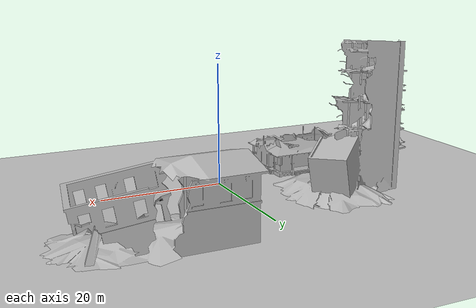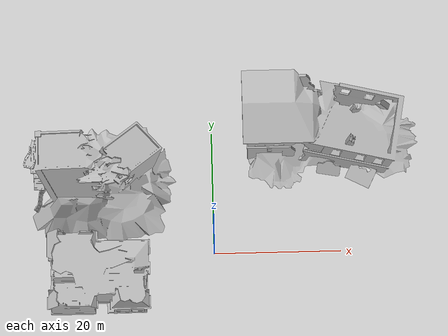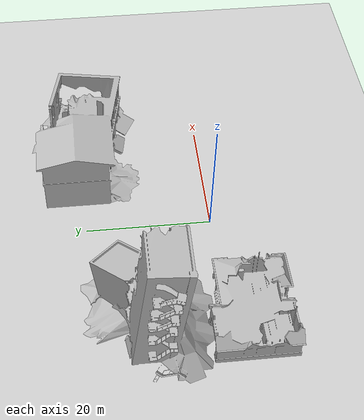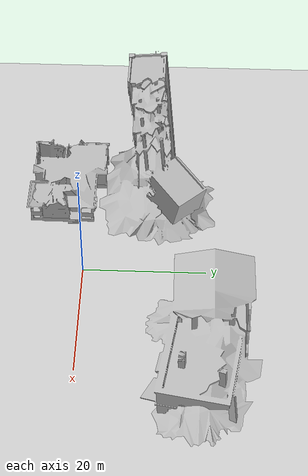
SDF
<sdf version="1.6">
 <world name="default">
  <light name="sun" type="directional">
   <pose>0 0 10 0 -0 0</pose>
   <diffuse>0.8 0.8 0.8 1</diffuse>
   <specular>0.2 0.2 0.2 1</specular>
   <attenuation>
    <range>1000</range>
    <constant>0.9</constant>
    <linear>0.01</linear>
    <quadratic>0.001</quadratic>
   </attenuation>
   <direction>-0.5 0.1 -0.9</direction>
  </light>
  <model name="ground_plane">
   <static>1</static>
   <link name="link">
    <collision name="collision">
     <geometry><plane><normal>0 0 1</normal><size>100 100</size></plane></geometry>
     <surface><friction><ode><mu>100</mu><mu2>50</mu2></ode></friction></surface>
    </collision>
    <visual name="visual">
     <cast_shadows>0</cast_shadows>
     <geometry><plane><normal>0 0 1</normal><size>100 100</size></plane></geometry>
     <material>
      <script><uri>file://media/materials/scripts/gazebo.material</uri><name>Gazebo/Grey</name></script>
     </material>
    </visual>
   </link>
  </model>
  <gravity>0 0 -9.8</gravity>
  <magnetic_field>6e-06 2.3e-05 -4.2e-05</magnetic_field>
  <atmosphere type="adiabatic"/>
  <physics name="default_physics" default="0" type="ode">
   <max_step_size>0.001</max_step_size>
   <real_time_factor>1</real_time_factor>
   <real_time_update_rate>1000</real_time_update_rate>
  </physics>
  <scene><ambient>0.4 0.4 0.4 1</ambient><background>0.7 0.7 0.7 1</background><shadows>1</shadows></scene>
  <spherical_coordinates>
   <surface_model>EARTH_WGS84</surface_model>
   <latitude_deg>0</latitude_deg>
   <longitude_deg>0</longitude_deg>
   <elevation>0</elevation>
   <heading_deg>0</heading_deg>
  </spherical_coordinates>
  <model name="collapsed_industrial">
   <static>1</static>
   <link name="link">
    <collision name="collision">
     <geometry><mesh><uri>model://collapsed_industrial/meshes/collapsed_industrial.dae</uri></mesh></geometry>
    </collision>
    <visual name="visual">
     <geometry><mesh><uri>model://collapsed_industrial/meshes/collapsed_industrial.dae</uri></mesh></geometry>
    </visual>
   </link>
   <pose>-18.2245 10.6777 0 0 -0 0</pose>
  </model>
  <model name="collapsed_house">
   <static>1</static>
   <link name="link">
    <collision name="collision">
     <geometry>
      <mesh><scale>1.5 1.5 1.5</scale><uri>model://collapsed_house/meshes/collapsed_house.dae</uri></mesh>
     </geometry>
    </collision>
    <visual name="visual">
     <geometry>
      <mesh><scale>1.5 1.5 1.5</scale><uri>model://collapsed_house/meshes/collapsed_house.dae</uri></mesh>
     </geometry>
    </visual>
   </link>
   <pose>-18.2046 -3.43547 0 0 -0 0</pose>
  </model>
  <model name="collapsed_fire_station">
   <static>1</static>
   <link name="link">
    <collision name="collision">
     <geometry><mesh><uri>model://collapsed_fire_station/meshes/collapsed_fire_station.dae</uri></mesh></geometry>
    </collision>
    <visual name="visual">
     <geometry><mesh><uri>model://collapsed_fire_station/meshes/collapsed_fire_station.dae</uri></mesh></geometry>
    </visual>
   </link>
   <pose>18.8261 19.3998 0 0 -0 0</pose>
  </model>
 </world>
</sdf>
